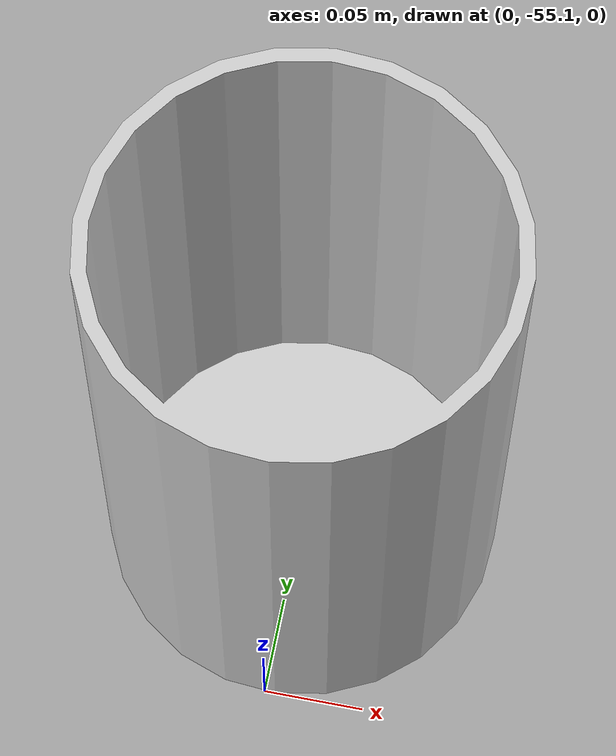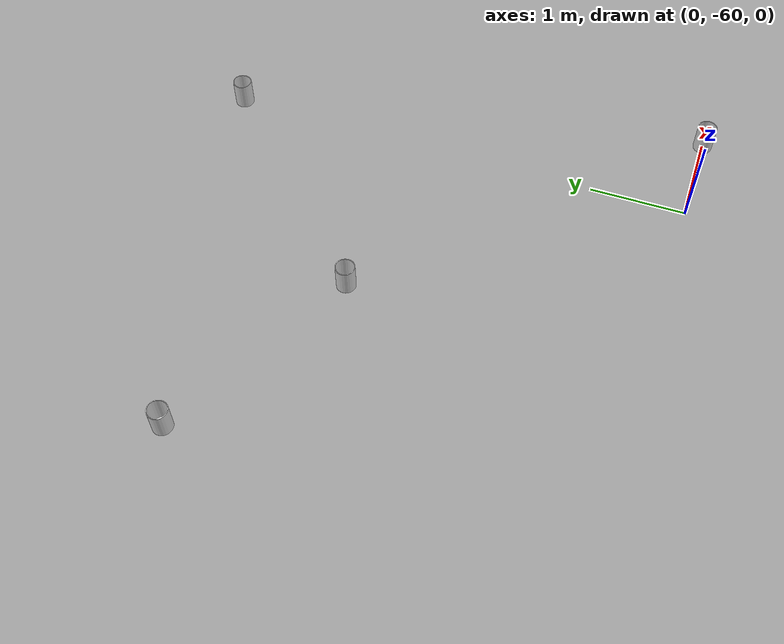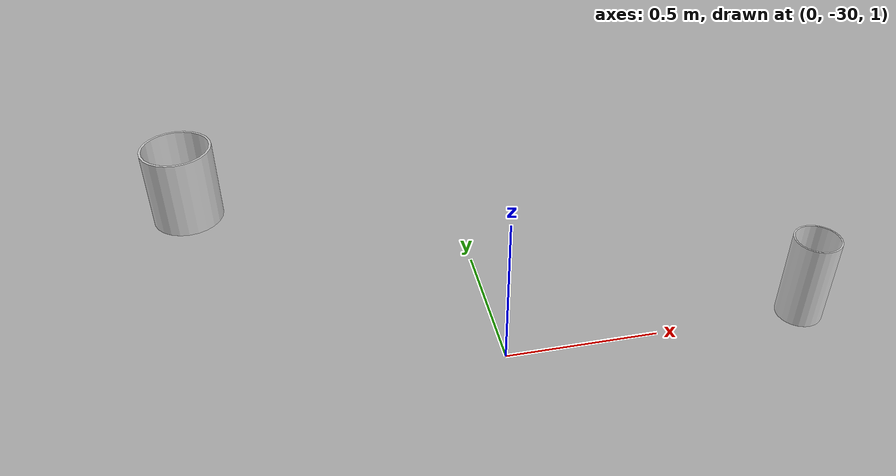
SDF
<sdf version="1.9">
 <world name="iris_runway">
  <physics name="1ms" type="ignore">
   <real_time_update_rate>1000.0</real_time_update_rate>
   <max_step_size>0.001</max_step_size>
   <real_time_factor>1.0</real_time_factor>
   <ode><solver><iters>50</iters></solver></ode>
  </physics>
  <plugin filename="gz-sim-physics-system" name="gz::sim::systems::Physics"/>
  <plugin filename="gz-sim-sensors-system" name="gz::sim::systems::Sensors">
   <render_engine>ogre2</render_engine>
  </plugin>
  <plugin filename="gz-sim-user-commands-system" name="gz::sim::systems::UserCommands"/>
  <plugin filename="gz-sim-scene-broadcaster-system" name="gz::sim::systems::SceneBroadcaster"/>
  <plugin filename="gz-sim-imu-system" name="gz::sim::systems::Imu"/>
  <plugin filename="gz-sim-navsat-system" name="gz::sim::systems::NavSat"/>
  <scene><ambient>1.0 1.0 1.0</ambient><background>0.8 0.8 0.8</background></scene>
  <spherical_coordinates>
   <latitude_deg>-35.363262</latitude_deg>
   <longitude_deg>149.165237</longitude_deg>
   <elevation>584</elevation>
   <heading_deg>0</heading_deg>
   <surface_model>EARTH_WGS84</surface_model>
  </spherical_coordinates>
  <light type="directional" name="sun">
   <pose>0 0 10 0 0 0</pose>
   <diffuse>0.8 0.8 0.8 1</diffuse>
   <specular>0.8 0.8 0.8 1</specular>
   <attenuation>
    <range>1000</range>
    <constant>0.9</constant>
    <linear>0.01</linear>
    <quadratic>0.001</quadratic>
   </attenuation>
   <direction>-0.5 0.1 -0.9</direction>
  </light>
  <model name="axes">
   <static>1</static>
   <link name="link">
    <visual name="r">
     <cast_shadows>0</cast_shadows>
     <pose>5 0 0.1 0 0 0</pose>
     <geometry><box><size>10 0.01 0.01</size></box></geometry>
     <material>
      <ambient>1 0 0 0.8</ambient>
      <diffuse>1 0 0 0.8</diffuse>
      <emissive>1 0 0 0.8</emissive>
      <specular>0.5 0.5 0.5 0.8</specular>
     </material>
    </visual>
    <visual name="g">
     <cast_shadows>0</cast_shadows>
     <pose>0 5 0.1 0 0 0</pose>
     <geometry><box><size>0.01 10 0.01</size></box></geometry>
     <material>
      <ambient>0 1 0 0.8</ambient>
      <diffuse>0 1 0 0.8</diffuse>
      <emissive>0 1 0 0.8</emissive>
      <specular>0.5 0.5 0.5 0.8</specular>
     </material>
    </visual>
    <visual name="b">
     <cast_shadows>0</cast_shadows>
     <pose>0 0 5.1 0 0 0</pose>
     <geometry><box><size>0.01 0.01 10</size></box></geometry>
     <material>
      <ambient>0 0 1 0.8</ambient>
      <diffuse>0 0 1 0.8</diffuse>
      <emissive>0 0 1 0.8</emissive>
      <specular>0.5 0.5 0.5 0.8</specular>
     </material>
    </visual>
    <sensor name="navsat_sensor" type="navsat"><always_on>1</always_on><update_rate>1</update_rate></sensor>
   </link>
  </model>
  <include><uri>model://bucket_150_300</uri><pose degrees="true">1 -30 1 0 0 363</pose></include>
  <include><uri>model://bucket_250_300</uri><pose degrees="true">-1 -29 1 0 0 363</pose></include>
  <include><uri>model://bucket_200_300_1</uri><pose degrees="true">0 -55 0 0 0 363</pose></include>
  <include><uri>model://bucket_200_300_3</uri><pose degrees="true">-4 -56 0 0 0 363</pose></include>
  <include><uri>model://bucket_200_300_4</uri><pose degrees="true">1 -60 0 0 0 363</pose></include>
  <include><uri>model://bucket_200_300_5</uri><pose degrees="true">-2 -57 0 0 0 363</pose></include>
 </world>
</sdf>

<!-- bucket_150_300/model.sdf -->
<sdf version='1.9'>
  <model name='bucket_150_300'>
    <pose>0 0 0 0 0 0</pose>
    <link name='base_link'>
      <velocity_decay>
        <linear>0.0</linear>
        <angular>0.0</angular>
      </velocity_decay>
      <inertial>
        <pose>0 0 0 0 0 0</pose>
        <mass>1.5</mass>
        <inertia>
          <ixx>0.008</ixx>
          <ixy>0</ixy>
          <ixz>0</ixz>
          <iyy>0.015</iyy>
          <iyz>0</iyz>
          <izz>0.017</izz>
        </inertia>
      </inertial>
      <collision name='base_collision'>
        <pose>0 0 0.15 0 0 0</pose>
        <geometry>
         <cylinder>
          <radius>0.075</radius>
          <length>0.30</length>
        </cylinder>
        </geometry>
        <surface>
          <contact>
            <ode>
              <max_vel>100.0</max_vel>
              <min_depth>0.001</min_depth>
            </ode>
          </contact>
          <friction>
            <ode>
              <mu>0.3</mu>
              <mu2>0.3</mu2>
            </ode>
          </friction>
        </surface>
      </collision>
      <visual name='base_visual'>
        <geometry>
          <mesh>
            <uri>meshes/bucket_150_300.dae</uri>
          </mesh>
        </geometry>
        <material>
          <ambient>0.05 0.05 0.05 1</ambient> <!-- 环境光较低，增加一点微弱的环境光效果 -->
          <diffuse>0.8 0.8 0.8 1</diffuse> <!-- 高漫反射值，代表白色塑料的主体颜色 -->
          <specular>0.5 0.5 0.5 1</specular> <!-- 适中的镜面反射值，增加塑料的光泽感 -->
        </material>
      </visual>
    </link>
  </model>
</sdf>

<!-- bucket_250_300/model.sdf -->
<sdf version='1.9'>
  <model name='bucket_250_300'>
    <pose>0 0 0 0 0 0</pose>
    <link name='base_link'>
      <velocity_decay>
        <linear>0.0</linear>
        <angular>0.0</angular>
      </velocity_decay>
      <inertial>
        <pose>0 0 0 0 0 0</pose>
        <mass>1.5</mass>
        <inertia>
          <ixx>0.008</ixx>
          <ixy>0</ixy>
          <ixz>0</ixz>
          <iyy>0.015</iyy>
          <iyz>0</iyz>
          <izz>0.017</izz>
        </inertia>
      </inertial>
      <collision name='base_collision'>
        <pose>0 0 0.15 0 0 0</pose>
        <geometry>
         <cylinder>
          <radius>0.075</radius>
          <length>0.30</length>
        </cylinder>
        </geometry>
        <surface>
          <contact>
            <ode>
              <max_vel>100.0</max_vel>
              <min_depth>0.001</min_depth>
            </ode>
          </contact>
          <friction>
            <ode>
              <mu>0.3</mu>
              <mu2>0.3</mu2>
            </ode>
          </friction>
        </surface>
      </collision>
      <visual name='base_visual'>
        <geometry>
          <mesh>
            <uri>meshes/bucket_250_300.dae</uri>
          </mesh>
        </geometry>
        <material>
          <ambient>0.05 0.05 0.05 1</ambient> <!-- 环境光较低，增加一点微弱的环境光效果 -->
          <diffuse>0.8 0.8 0.8 1</diffuse> <!-- 高漫反射值，代表白色塑料的主体颜色 -->
          <specular>0.5 0.5 0.5 1</specular> <!-- 适中的镜面反射值，增加塑料的光泽感 -->
        </material>
      </visual>
    </link>
  </model>
</sdf>

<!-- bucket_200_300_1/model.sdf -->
<sdf version='1.9'>
  <model name='bucket_200_300_1'>
    <pose>0 0 0 0 0 0</pose>
    <link name='base_link'>
      <velocity_decay>
        <linear>0.0</linear>
        <angular>0.0</angular>
      </velocity_decay>
      <inertial>
        <pose>0 0 0 0 0 0</pose>
        <mass>1.5</mass>
        <inertia>
          <ixx>0.008</ixx>
          <ixy>0</ixy>
          <ixz>0</ixz>
          <iyy>0.015</iyy>
          <iyz>0</iyz>
          <izz>0.017</izz>
        </inertia>
      </inertial>
      <collision name='base_collision'>
        <pose>0 0 0.15 0 0 0</pose>
        <geometry>
         <cylinder>
          <radius>0.075</radius>
          <length>0.30</length>
        </cylinder>
        </geometry>
        <surface>
          <contact>
            <ode>
              <max_vel>100.0</max_vel>
              <min_depth>0.001</min_depth>
            </ode>
          </contact>
          <friction>
            <ode>
              <mu>0.3</mu>
              <mu2>0.3</mu2>
            </ode>
          </friction>
        </surface>
      </collision>
      <visual name='base_visual'>
        <geometry>
          <mesh>
            <uri>meshes/bucket_200_300_1.dae</uri>
          </mesh>
        </geometry>
        <material>
          <ambient>0.05 0.05 0.05 1</ambient> <!-- 环境光较低，增加一点微弱的环境光效果 -->
          <diffuse>0.8 0.8 0.8 1</diffuse> <!-- 高漫反射值，代表白色塑料的主体颜色 -->
          <specular>0.5 0.5 0.5 1</specular> <!-- 适中的镜面反射值，增加塑料的光泽感 -->
          <pbr>
            <metal>
              <albedo_map>materials/textures/1.jpg</albedo_map>
              <metalness>0</metalness>
              <roughness>0.7</roughness>
            </metal>
          </pbr>
        </material>
      </visual>
    </link>
  </model>
</sdf>

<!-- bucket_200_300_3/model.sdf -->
<sdf version='1.9'>
  <model name='bucket_200_300_3'>
    <pose>0 0 0 0 0 0</pose>
    <link name='base_link'>
      <velocity_decay>
        <linear>0.0</linear>
        <angular>0.0</angular>
      </velocity_decay>
      <inertial>
        <pose>0 0 0 0 0 0</pose>
        <mass>1.5</mass>
        <inertia>
          <ixx>0.008</ixx>
          <ixy>0</ixy>
          <ixz>0</ixz>
          <iyy>0.015</iyy>
          <iyz>0</iyz>
          <izz>0.017</izz>
        </inertia>
      </inertial>
      <collision name='base_collision'>
        <pose>0 0 0.15 0 0 0</pose>
        <geometry>
         <cylinder>
          <radius>0.075</radius>
          <length>0.30</length>
        </cylinder>
        </geometry>
        <surface>
          <contact>
            <ode>
              <max_vel>100.0</max_vel>
              <min_depth>0.001</min_depth>
            </ode>
          </contact>
          <friction>
            <ode>
              <mu>0.3</mu>
              <mu2>0.3</mu2>
            </ode>
          </friction>
        </surface>
      </collision>
      <visual name='base_visual'>
        <geometry>
          <mesh>
            <uri>meshes/bucket_200_300_1.dae</uri>
          </mesh>
        </geometry>
        <material>
          <ambient>0.05 0.05 0.05 1</ambient> <!-- 环境光较低，增加一点微弱的环境光效果 -->
          <diffuse>0.8 0.8 0.8 1</diffuse> <!-- 高漫反射值，代表白色塑料的主体颜色 -->
          <specular>0.5 0.5 0.5 1</specular> <!-- 适中的镜面反射值，增加塑料的光泽感 -->
          <pbr>
            <metal>
              <albedo_map>materials/textures/1.jpg</albedo_map>
              <metalness>0</metalness>
              <roughness>0.7</roughness>
            </metal>
          </pbr>
        </material>
      </visual>
    </link>
  </model>
</sdf>

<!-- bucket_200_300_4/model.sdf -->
<sdf version='1.9'>
  <model name='bucket_200_300_4'>
    <pose>0 0 0 0 0 0</pose>
    <link name='base_link'>
      <velocity_decay>
        <linear>0.0</linear>
        <angular>0.0</angular>
      </velocity_decay>
      <inertial>
        <pose>0 0 0 0 0 0</pose>
        <mass>1.5</mass>
        <inertia>
          <ixx>0.008</ixx>
          <ixy>0</ixy>
          <ixz>0</ixz>
          <iyy>0.015</iyy>
          <iyz>0</iyz>
          <izz>0.017</izz>
        </inertia>
      </inertial>
      <collision name='base_collision'>
        <pose>0 0 0.15 0 0 0</pose>
        <geometry>
         <cylinder>
          <radius>0.075</radius>
          <length>0.30</length>
        </cylinder>
        </geometry>
        <surface>
          <contact>
            <ode>
              <max_vel>100.0</max_vel>
              <min_depth>0.001</min_depth>
            </ode>
          </contact>
          <friction>
            <ode>
              <mu>0.3</mu>
              <mu2>0.3</mu2>
            </ode>
          </friction>
        </surface>
      </collision>
      <visual name='base_visual'>
        <geometry>
          <mesh>
            <uri>meshes/bucket_200_300_1.dae</uri>
          </mesh>
        </geometry>
        <material>
          <ambient>0.05 0.05 0.05 1</ambient> <!-- 环境光较低，增加一点微弱的环境光效果 -->
          <diffuse>0.8 0.8 0.8 1</diffuse> <!-- 高漫反射值，代表白色塑料的主体颜色 -->
          <specular>0.5 0.5 0.5 1</specular> <!-- 适中的镜面反射值，增加塑料的光泽感 -->
          <pbr>
            <metal>
              <albedo_map>materials/textures/1.jpg</albedo_map>
              <metalness>0</metalness>
              <roughness>0.7</roughness>
            </metal>
          </pbr>
        </material>
      </visual>
    </link>
  </model>
</sdf>

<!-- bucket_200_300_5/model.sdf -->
<sdf version='1.9'>
  <model name='bucket_200_300_5'>
    <pose>0 0 0 0 0 0</pose>
    <link name='base_link'>
      <velocity_decay>
        <linear>0.0</linear>
        <angular>0.0</angular>
      </velocity_decay>
      <inertial>
        <pose>0 0 0 0 0 0</pose>
        <mass>1.5</mass>
        <inertia>
          <ixx>0.008</ixx>
          <ixy>0</ixy>
          <ixz>0</ixz>
          <iyy>0.015</iyy>
          <iyz>0</iyz>
          <izz>0.017</izz>
        </inertia>
      </inertial>
      <collision name='base_collision'>
        <pose>0 0 0.15 0 0 0</pose>
        <geometry>
         <cylinder>
          <radius>0.075</radius>
          <length>0.30</length>
        </cylinder>
        </geometry>
        <surface>
          <contact>
            <ode>
              <max_vel>100.0</max_vel>
              <min_depth>0.001</min_depth>
            </ode>
          </contact>
          <friction>
            <ode>
              <mu>0.3</mu>
              <mu2>0.3</mu2>
            </ode>
          </friction>
        </surface>
      </collision>
      <visual name='base_visual'>
        <geometry>
          <mesh>
            <uri>meshes/bucket_200_300_1.dae</uri>
          </mesh>
        </geometry>
        <material>
          <ambient>0.05 0.05 0.05 1</ambient> <!-- 环境光较低，增加一点微弱的环境光效果 -->
          <diffuse>0.8 0.8 0.8 1</diffuse> <!-- 高漫反射值，代表白色塑料的主体颜色 -->
          <specular>0.5 0.5 0.5 1</specular> <!-- 适中的镜面反射值，增加塑料的光泽感 -->
          <pbr>
            <metal>
              <albedo_map>materials/textures/1.jpg</albedo_map>
              <metalness>0</metalness>
              <roughness>0.7</roughness>
            </metal>
          </pbr>
        </material>
      </visual>
    </link>
  </model>
</sdf>
